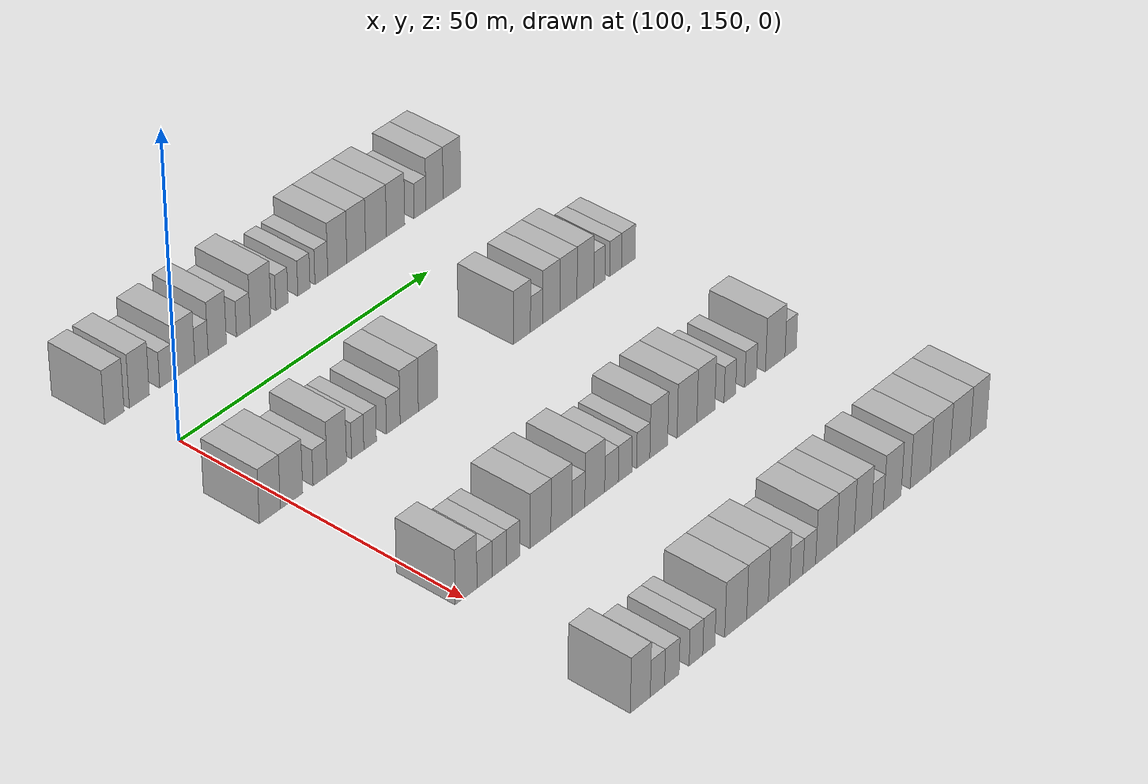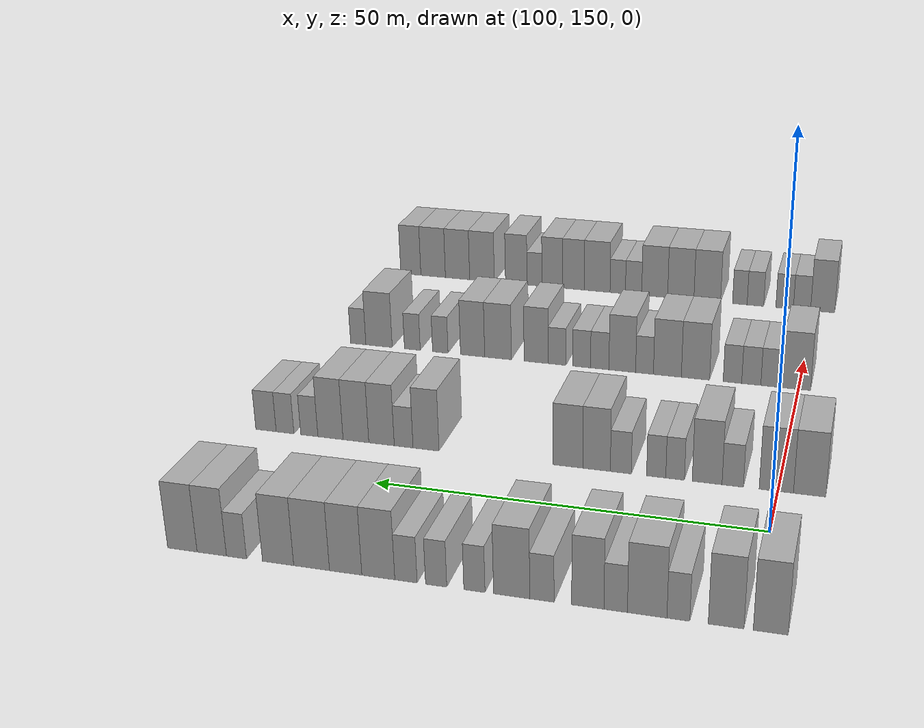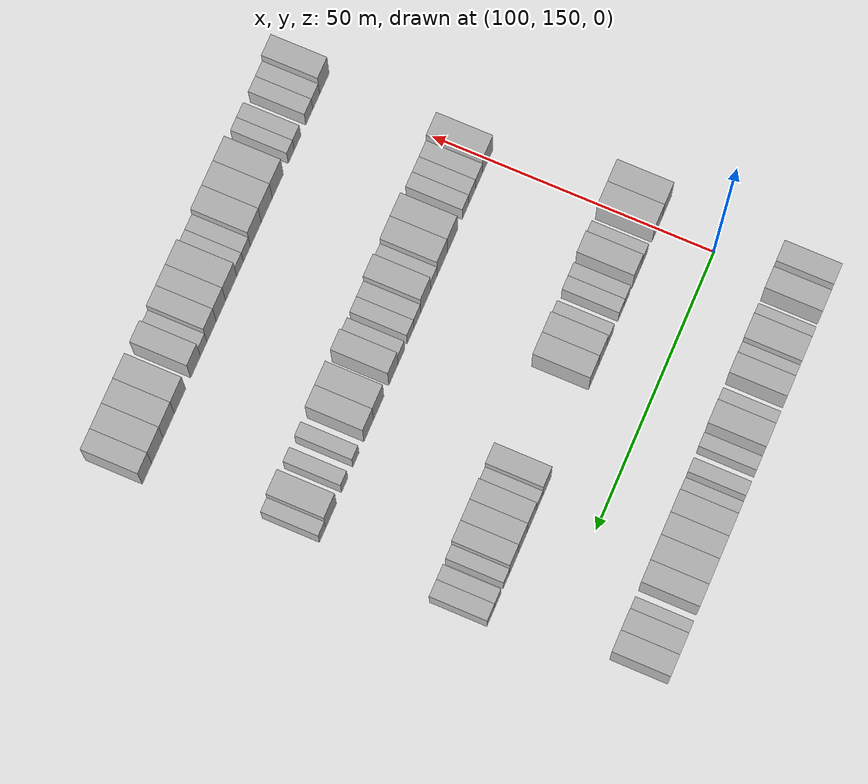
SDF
<sdf version="1.6">
 <world name="default">
  <model name="building_614">
   <static>1</static>
   <pose>85.0000 147.8713 0 0.000000 0.000000 0.000000</pose>
   <link name="link">
    <pose>0 0 4.50 0 0 0</pose>
    <collision name="collision"><geometry><box><size>10.0000 3.7098 9.0000</size></box></geometry></collision>
    <visual name="visual">
     <cast_shadows>0</cast_shadows>
     <geometry><box><size>10.0000 3.7098 9.0000</size></box></geometry>
     <material>
      <script>
       <uri>model://HANNAS_wall/materials/scripts</uri>
       <uri>model://HANNAS_wall/materials/textures</uri>
       <name>vrc/HANNAS_wall</name>
      </script>
     </material>
    </visual>
   </link>
  </model>
  <model name="building_615">
   <static>1</static>
   <pose>85.0000 152.6487 0 0.000000 0.000000 0.000000</pose>
   <link name="link">
    <pose>0 0 4.50 0 0 0</pose>
    <collision name="collision"><geometry><box><size>10.0000 3.8450 9.0000</size></box></geometry></collision>
    <visual name="visual">
     <cast_shadows>0</cast_shadows>
     <geometry><box><size>10.0000 3.8450 9.0000</size></box></geometry>
     <material>
      <script>
       <uri>model://HANNAS_wall/materials/scripts</uri>
       <uri>model://HANNAS_wall/materials/textures</uri>
       <name>vrc/HANNAS_wall</name>
      </script>
     </material>
    </visual>
   </link>
  </model>
  <model name="building_616">
   <static>1</static>
   <pose>85.0000 157.8235 0 0.000000 0.000000 0.000000</pose>
   <link name="link">
    <pose>0 0 3.00 0 0 0</pose>
    <collision name="collision"><geometry><box><size>10.0000 2.5046 6.0000</size></box></geometry></collision>
    <visual name="visual">
     <cast_shadows>0</cast_shadows>
     <geometry><box><size>10.0000 2.5046 6.0000</size></box></geometry>
     <material>
      <script>
       <uri>model://HANNAS_wall/materials/scripts</uri>
       <uri>model://HANNAS_wall/materials/textures</uri>
       <name>vrc/HANNAS_wall</name>
      </script>
     </material>
    </visual>
   </link>
  </model>
  <model name="building_617">
   <static>1</static>
   <pose>85.0000 161.2560 0 0.000000 0.000000 0.000000</pose>
   <link name="link">
    <pose>0 0 4.50 0 0 0</pose>
    <collision name="collision"><geometry><box><size>10.0000 4.3603 9.0000</size></box></geometry></collision>
    <visual name="visual">
     <cast_shadows>0</cast_shadows>
     <geometry><box><size>10.0000 4.3603 9.0000</size></box></geometry>
     <material>
      <script>
       <uri>model://HANNAS_wall/materials/scripts</uri>
       <uri>model://HANNAS_wall/materials/textures</uri>
       <name>vrc/HANNAS_wall</name>
      </script>
     </material>
    </visual>
   </link>
  </model>
  <model name="building_618">
   <static>1</static>
   <pose>85.0000 164.7422 0 0.000000 0.000000 0.000000</pose>
   <link name="link">
    <pose>0 0 3.00 0 0 0</pose>
    <collision name="collision"><geometry><box><size>10.0000 2.6121 6.0000</size></box></geometry></collision>
    <visual name="visual">
     <cast_shadows>0</cast_shadows>
     <geometry><box><size>10.0000 2.6121 6.0000</size></box></geometry>
     <material>
      <script>
       <uri>model://HANNAS_wall/materials/scripts</uri>
       <uri>model://HANNAS_wall/materials/textures</uri>
       <name>vrc/HANNAS_wall</name>
      </script>
     </material>
    </visual>
   </link>
  </model>
  <model name="building_619">
   <static>1</static>
   <pose>85.0000 167.8631 0 0.000000 0.000000 0.000000</pose>
   <link name="link">
    <pose>0 0 4.50 0 0 0</pose>
    <collision name="collision"><geometry><box><size>10.0000 3.6295 9.0000</size></box></geometry></collision>
    <visual name="visual">
     <cast_shadows>0</cast_shadows>
     <geometry><box><size>10.0000 3.6295 9.0000</size></box></geometry>
     <material>
      <script>
       <uri>model://HANNAS_wall/materials/scripts</uri>
       <uri>model://HANNAS_wall/materials/textures</uri>
       <name>vrc/HANNAS_wall</name>
      </script>
     </material>
    </visual>
   </link>
  </model>
  <model name="building_620">
   <static>1</static>
   <pose>85.0000 173.0592 0 0.000000 0.000000 0.000000</pose>
   <link name="link">
    <pose>0 0 3.00 0 0 0</pose>
    <collision name="collision"><geometry><box><size>10.0000 2.7628 6.0000</size></box></geometry></collision>
    <visual name="visual">
     <cast_shadows>0</cast_shadows>
     <geometry><box><size>10.0000 2.7628 6.0000</size></box></geometry>
     <material>
      <script>
       <uri>model://HANNAS_wall/materials/scripts</uri>
       <uri>model://HANNAS_wall/materials/textures</uri>
       <name>vrc/HANNAS_wall</name>
      </script>
     </material>
    </visual>
   </link>
  </model>
  <model name="building_621">
   <static>1</static>
   <pose>85.0000 176.5247 0 0.000000 0.000000 0.000000</pose>
   <link name="link">
    <pose>0 0 4.50 0 0 0</pose>
    <collision name="collision"><geometry><box><size>10.0000 4.1682 9.0000</size></box></geometry></collision>
    <visual name="visual">
     <cast_shadows>0</cast_shadows>
     <geometry><box><size>10.0000 4.1682 9.0000</size></box></geometry>
     <material>
      <script>
       <uri>model://HANNAS_wall/materials/scripts</uri>
       <uri>model://HANNAS_wall/materials/textures</uri>
       <name>vrc/HANNAS_wall</name>
      </script>
     </material>
    </visual>
   </link>
  </model>
  <model name="building_622">
   <static>1</static>
   <pose>85.0000 180.8434 0 0.000000 0.000000 0.000000</pose>
   <link name="link">
    <pose>0 0 3.00 0 0 0</pose>
    <collision name="collision"><geometry><box><size>10.0000 2.4691 6.0000</size></box></geometry></collision>
    <visual name="visual">
     <cast_shadows>0</cast_shadows>
     <geometry><box><size>10.0000 2.4691 6.0000</size></box></geometry>
     <material>
      <script>
       <uri>model://HANNAS_wall/materials/scripts</uri>
       <uri>model://HANNAS_wall/materials/textures</uri>
       <name>vrc/HANNAS_wall</name>
      </script>
     </material>
    </visual>
   </link>
  </model>
  <model name="building_623">
   <static>1</static>
   <pose>85.0000 185.3297 0 0.000000 0.000000 0.000000</pose>
   <link name="link">
    <pose>0 0 3.00 0 0 0</pose>
    <collision name="collision"><geometry><box><size>10.0000 2.5035 6.0000</size></box></geometry></collision>
    <visual name="visual">
     <cast_shadows>0</cast_shadows>
     <geometry><box><size>10.0000 2.5035 6.0000</size></box></geometry>
     <material>
      <script>
       <uri>model://HANNAS_wall/materials/scripts</uri>
       <uri>model://HANNAS_wall/materials/textures</uri>
       <name>vrc/HANNAS_wall</name>
      </script>
     </material>
    </visual>
   </link>
  </model>
  <model name="building_624">
   <static>1</static>
   <pose>85.0000 188.9099 0 0.000000 0.000000 0.000000</pose>
   <link name="link">
    <pose>0 0 3.00 0 0 0</pose>
    <collision name="collision"><geometry><box><size>10.0000 2.6570 6.0000</size></box></geometry></collision>
    <visual name="visual">
     <cast_shadows>0</cast_shadows>
     <geometry><box><size>10.0000 2.6570 6.0000</size></box></geometry>
     <material>
      <script>
       <uri>model://HANNAS_wall/materials/scripts</uri>
       <uri>model://HANNAS_wall/materials/textures</uri>
       <name>vrc/HANNAS_wall</name>
      </script>
     </material>
    </visual>
   </link>
  </model>
  <model name="building_625">
   <static>1</static>
   <pose>85.0000 192.2227 0 0.000000 0.000000 0.000000</pose>
   <link name="link">
    <pose>0 0 4.50 0 0 0</pose>
    <collision name="collision"><geometry><box><size>10.0000 3.9685 9.0000</size></box></geometry></collision>
    <visual name="visual">
     <cast_shadows>0</cast_shadows>
     <geometry><box><size>10.0000 3.9685 9.0000</size></box></geometry>
     <material>
      <script>
       <uri>model://HANNAS_wall/materials/scripts</uri>
       <uri>model://HANNAS_wall/materials/textures</uri>
       <name>vrc/HANNAS_wall</name>
      </script>
     </material>
    </visual>
   </link>
  </model>
  <model name="building_626">
   <static>1</static>
   <pose>85.0000 196.1717 0 0.000000 0.000000 0.000000</pose>
   <link name="link">
    <pose>0 0 4.50 0 0 0</pose>
    <collision name="collision"><geometry><box><size>10.0000 3.9293 9.0000</size></box></geometry></collision>
    <visual name="visual">
     <cast_shadows>0</cast_shadows>
     <geometry><box><size>10.0000 3.9293 9.0000</size></box></geometry>
     <material>
      <script>
       <uri>model://HANNAS_wall/materials/scripts</uri>
       <uri>model://HANNAS_wall/materials/textures</uri>
       <name>vrc/HANNAS_wall</name>
      </script>
     </material>
    </visual>
   </link>
  </model>
  <model name="building_627">
   <static>1</static>
   <pose>85.0000 200.3387 0 0.000000 0.000000 0.000000</pose>
   <link name="link">
    <pose>0 0 4.50 0 0 0</pose>
    <collision name="collision"><geometry><box><size>10.0000 4.4048 9.0000</size></box></geometry></collision>
    <visual name="visual">
     <cast_shadows>0</cast_shadows>
     <geometry><box><size>10.0000 4.4048 9.0000</size></box></geometry>
     <material>
      <script>
       <uri>model://HANNAS_wall/materials/scripts</uri>
       <uri>model://HANNAS_wall/materials/textures</uri>
       <name>vrc/HANNAS_wall</name>
      </script>
     </material>
    </visual>
   </link>
  </model>
  <model name="building_628">
   <static>1</static>
   <pose>85.0000 204.4795 0 0.000000 0.000000 0.000000</pose>
   <link name="link">
    <pose>0 0 4.50 0 0 0</pose>
    <collision name="collision"><geometry><box><size>10.0000 3.8768 9.0000</size></box></geometry></collision>
    <visual name="visual">
     <cast_shadows>0</cast_shadows>
     <geometry><box><size>10.0000 3.8768 9.0000</size></box></geometry>
     <material>
      <script>
       <uri>model://HANNAS_wall/materials/scripts</uri>
       <uri>model://HANNAS_wall/materials/textures</uri>
       <name>vrc/HANNAS_wall</name>
      </script>
     </material>
    </visual>
   </link>
  </model>
  <model name="building_629">
   <static>1</static>
   <pose>85.0000 209.6832 0 0.000000 0.000000 0.000000</pose>
   <link name="link">
    <pose>0 0 3.00 0 0 0</pose>
    <collision name="collision"><geometry><box><size>10.0000 2.5306 6.0000</size></box></geometry></collision>
    <visual name="visual">
     <cast_shadows>0</cast_shadows>
     <geometry><box><size>10.0000 2.5306 6.0000</size></box></geometry>
     <material>
      <script>
       <uri>model://HANNAS_wall/materials/scripts</uri>
       <uri>model://HANNAS_wall/materials/textures</uri>
       <name>vrc/HANNAS_wall</name>
      </script>
     </material>
    </visual>
   </link>
  </model>
  <model name="building_630">
   <static>1</static>
   <pose>85.0000 212.8100 0 0.000000 0.000000 0.000000</pose>
   <link name="link">
    <pose>0 0 4.50 0 0 0</pose>
    <collision name="collision"><geometry><box><size>10.0000 3.7230 9.0000</size></box></geometry></collision>
    <visual name="visual">
     <cast_shadows>0</cast_shadows>
     <geometry><box><size>10.0000 3.7230 9.0000</size></box></geometry>
     <material>
      <script>
       <uri>model://HANNAS_wall/materials/scripts</uri>
       <uri>model://HANNAS_wall/materials/textures</uri>
       <name>vrc/HANNAS_wall</name>
      </script>
     </material>
    </visual>
   </link>
  </model>
  <model name="building_631">
   <static>1</static>
   <pose>85.0000 216.5581 0 0.000000 0.000000 0.000000</pose>
   <link name="link">
    <pose>0 0 4.50 0 0 0</pose>
    <collision name="collision"><geometry><box><size>10.0000 3.7731 9.0000</size></box></geometry></collision>
    <visual name="visual">
     <cast_shadows>0</cast_shadows>
     <geometry><box><size>10.0000 3.7731 9.0000</size></box></geometry>
     <material>
      <script>
       <uri>model://HANNAS_wall/materials/scripts</uri>
       <uri>model://HANNAS_wall/materials/textures</uri>
       <name>vrc/HANNAS_wall</name>
      </script>
     </material>
    </visual>
   </link>
  </model>
  <model name="building_848">
   <static>1</static>
   <pose>115.0000 146.1170 0 0.000000 0.000000 0.000000</pose>
   <link name="link">
    <pose>0 0 4.50 0 0 0</pose>
    <collision name="collision"><geometry><box><size>10.0000 4.0213 9.0000</size></box></geometry></collision>
    <visual name="visual">
     <cast_shadows>0</cast_shadows>
     <geometry><box><size>10.0000 4.0213 9.0000</size></box></geometry>
     <material>
      <script>
       <uri>model://HANNAS_wall/materials/scripts</uri>
       <uri>model://HANNAS_wall/materials/textures</uri>
       <name>vrc/HANNAS_wall</name>
      </script>
     </material>
    </visual>
   </link>
  </model>
  <model name="building_849">
   <static>1</static>
   <pose>115.0000 150.2794 0 0.000000 0.000000 0.000000</pose>
   <link name="link">
    <pose>0 0 4.50 0 0 0</pose>
    <collision name="collision"><geometry><box><size>10.0000 4.3033 9.0000</size></box></geometry></collision>
    <visual name="visual">
     <cast_shadows>0</cast_shadows>
     <geometry><box><size>10.0000 4.3033 9.0000</size></box></geometry>
     <material>
      <script>
       <uri>model://HANNAS_wall/materials/scripts</uri>
       <uri>model://HANNAS_wall/materials/textures</uri>
       <name>vrc/HANNAS_wall</name>
      </script>
     </material>
    </visual>
   </link>
  </model>
  <model name="building_850">
   <static>1</static>
   <pose>115.0000 155.7871 0 0.000000 0.000000 0.000000</pose>
   <link name="link">
    <pose>0 0 3.00 0 0 0</pose>
    <collision name="collision"><geometry><box><size>10.0000 2.7122 6.0000</size></box></geometry></collision>
    <visual name="visual">
     <cast_shadows>0</cast_shadows>
     <geometry><box><size>10.0000 2.7122 6.0000</size></box></geometry>
     <material>
      <script>
       <uri>model://HANNAS_wall/materials/scripts</uri>
       <uri>model://HANNAS_wall/materials/textures</uri>
       <name>vrc/HANNAS_wall</name>
      </script>
     </material>
    </visual>
   </link>
  </model>
  <model name="building_851">
   <static>1</static>
   <pose>115.0000 159.0551 0 0.000000 0.000000 0.000000</pose>
   <link name="link">
    <pose>0 0 4.50 0 0 0</pose>
    <collision name="collision"><geometry><box><size>10.0000 3.8238 9.0000</size></box></geometry></collision>
    <visual name="visual">
     <cast_shadows>0</cast_shadows>
     <geometry><box><size>10.0000 3.8238 9.0000</size></box></geometry>
     <material>
      <script>
       <uri>model://HANNAS_wall/materials/scripts</uri>
       <uri>model://HANNAS_wall/materials/textures</uri>
       <name>vrc/HANNAS_wall</name>
      </script>
     </material>
    </visual>
   </link>
  </model>
  <model name="building_852">
   <static>1</static>
   <pose>115.0000 163.1769 0 0.000000 0.000000 0.000000</pose>
   <link name="link">
    <pose>0 0 3.00 0 0 0</pose>
    <collision name="collision"><geometry><box><size>10.0000 2.4198 6.0000</size></box></geometry></collision>
    <visual name="visual">
     <cast_shadows>0</cast_shadows>
     <geometry><box><size>10.0000 2.4198 6.0000</size></box></geometry>
     <material>
      <script>
       <uri>model://HANNAS_wall/materials/scripts</uri>
       <uri>model://HANNAS_wall/materials/textures</uri>
       <name>vrc/HANNAS_wall</name>
      </script>
     </material>
    </visual>
   </link>
  </model>
  <model name="building_853">
   <static>1</static>
   <pose>115.0000 165.6345 0 0.000000 0.000000 0.000000</pose>
   <link name="link">
    <pose>0 0 3.00 0 0 0</pose>
    <collision name="collision"><geometry><box><size>10.0000 2.4954 6.0000</size></box></geometry></collision>
    <visual name="visual">
     <cast_shadows>0</cast_shadows>
     <geometry><box><size>10.0000 2.4954 6.0000</size></box></geometry>
     <material>
      <script>
       <uri>model://HANNAS_wall/materials/scripts</uri>
       <uri>model://HANNAS_wall/materials/textures</uri>
       <name>vrc/HANNAS_wall</name>
      </script>
     </material>
    </visual>
   </link>
  </model>
  <model name="building_854">
   <static>1</static>
   <pose>115.0000 170.2615 0 0.000000 0.000000 0.000000</pose>
   <link name="link">
    <pose>0 0 3.00 0 0 0</pose>
    <collision name="collision"><geometry><box><size>10.0000 2.7585 6.0000</size></box></geometry></collision>
    <visual name="visual">
     <cast_shadows>0</cast_shadows>
     <geometry><box><size>10.0000 2.7585 6.0000</size></box></geometry>
     <material>
      <script>
       <uri>model://HANNAS_wall/materials/scripts</uri>
       <uri>model://HANNAS_wall/materials/textures</uri>
       <name>vrc/HANNAS_wall</name>
      </script>
     </material>
    </visual>
   </link>
  </model>
  <model name="building_855">
   <static>1</static>
   <pose>115.0000 173.4720 0 0.000000 0.000000 0.000000</pose>
   <link name="link">
    <pose>0 0 4.50 0 0 0</pose>
    <collision name="collision"><geometry><box><size>10.0000 3.6626 9.0000</size></box></geometry></collision>
    <visual name="visual">
     <cast_shadows>0</cast_shadows>
     <geometry><box><size>10.0000 3.6626 9.0000</size></box></geometry>
     <material>
      <script>
       <uri>model://HANNAS_wall/materials/scripts</uri>
       <uri>model://HANNAS_wall/materials/textures</uri>
       <name>vrc/HANNAS_wall</name>
      </script>
     </material>
    </visual>
   </link>
  </model>
  <model name="building_856">
   <static>1</static>
   <pose>115.0000 177.2837 0 0.000000 0.000000 0.000000</pose>
   <link name="link">
    <pose>0 0 4.50 0 0 0</pose>
    <collision name="collision"><geometry><box><size>10.0000 3.9606 9.0000</size></box></geometry></collision>
    <visual name="visual">
     <cast_shadows>0</cast_shadows>
     <geometry><box><size>10.0000 3.9606 9.0000</size></box></geometry>
     <material>
      <script>
       <uri>model://HANNAS_wall/materials/scripts</uri>
       <uri>model://HANNAS_wall/materials/textures</uri>
       <name>vrc/HANNAS_wall</name>
      </script>
     </material>
    </visual>
   </link>
  </model>
  <model name="building_857">
   <static>1</static>
   <pose>115.0000 196.7257 0 0.000000 0.000000 0.000000</pose>
   <link name="link">
    <pose>0 0 4.50 0 0 0</pose>
    <collision name="collision"><geometry><box><size>10.0000 3.6411 9.0000</size></box></geometry></collision>
    <visual name="visual">
     <cast_shadows>0</cast_shadows>
     <geometry><box><size>10.0000 3.6411 9.0000</size></box></geometry>
     <material>
      <script>
       <uri>model://HANNAS_wall/materials/scripts</uri>
       <uri>model://HANNAS_wall/materials/textures</uri>
       <name>vrc/HANNAS_wall</name>
      </script>
     </material>
    </visual>
   </link>
  </model>
  <model name="building_858">
   <static>1</static>
   <pose>115.0000 199.8703 0 0.000000 0.000000 0.000000</pose>
   <link name="link">
    <pose>0 0 3.00 0 0 0</pose>
    <collision name="collision"><geometry><box><size>10.0000 2.6481 6.0000</size></box></geometry></collision>
    <visual name="visual">
     <cast_shadows>0</cast_shadows>
     <geometry><box><size>10.0000 2.6481 6.0000</size></box></geometry>
     <material>
      <script>
       <uri>model://HANNAS_wall/materials/scripts</uri>
       <uri>model://HANNAS_wall/materials/textures</uri>
       <name>vrc/HANNAS_wall</name>
      </script>
     </material>
    </visual>
   </link>
  </model>
  <model name="building_859">
   <static>1</static>
   <pose>115.0000 203.0043 0 0.000000 0.000000 0.000000</pose>
   <link name="link">
    <pose>0 0 4.50 0 0 0</pose>
    <collision name="collision"><geometry><box><size>10.0000 3.6198 9.0000</size></box></geometry></collision>
    <visual name="visual">
     <cast_shadows>0</cast_shadows>
     <geometry><box><size>10.0000 3.6198 9.0000</size></box></geometry>
     <material>
      <script>
       <uri>model://HANNAS_wall/materials/scripts</uri>
       <uri>model://HANNAS_wall/materials/textures</uri>
       <name>vrc/HANNAS_wall</name>
      </script>
     </material>
    </visual>
   </link>
  </model>
  <model name="building_860">
   <static>1</static>
   <pose>115.0000 206.6594 0 0.000000 0.000000 0.000000</pose>
   <link name="link">
    <pose>0 0 4.50 0 0 0</pose>
    <collision name="collision"><geometry><box><size>10.0000 3.6905 9.0000</size></box></geometry></collision>
    <visual name="visual">
     <cast_shadows>0</cast_shadows>
     <geometry><box><size>10.0000 3.6905 9.0000</size></box></geometry>
     <material>
      <script>
       <uri>model://HANNAS_wall/materials/scripts</uri>
       <uri>model://HANNAS_wall/materials/textures</uri>
       <name>vrc/HANNAS_wall</name>
      </script>
     </material>
    </visual>
   </link>
  </model>
  <model name="building_861">
   <static>1</static>
   <pose>115.0000 210.3264 0 0.000000 0.000000 0.000000</pose>
   <link name="link">
    <pose>0 0 4.50 0 0 0</pose>
    <collision name="collision"><geometry><box><size>10.0000 3.6435 9.0000</size></box></geometry></collision>
    <visual name="visual">
     <cast_shadows>0</cast_shadows>
     <geometry><box><size>10.0000 3.6435 9.0000</size></box></geometry>
     <material>
      <script>
       <uri>model://HANNAS_wall/materials/scripts</uri>
       <uri>model://HANNAS_wall/materials/textures</uri>
       <name>vrc/HANNAS_wall</name>
      </script>
     </material>
    </visual>
   </link>
  </model>
  <model name="building_862">
   <static>1</static>
   <pose>115.0000 213.3924 0 0.000000 0.000000 0.000000</pose>
   <link name="link">
    <pose>0 0 3.00 0 0 0</pose>
    <collision name="collision"><geometry><box><size>10.0000 2.4885 6.0000</size></box></geometry></collision>
    <visual name="visual">
     <cast_shadows>0</cast_shadows>
     <geometry><box><size>10.0000 2.4885 6.0000</size></box></geometry>
     <material>
      <script>
       <uri>model://HANNAS_wall/materials/scripts</uri>
       <uri>model://HANNAS_wall/materials/textures</uri>
       <name>vrc/HANNAS_wall</name>
      </script>
     </material>
    </visual>
   </link>
  </model>
  <model name="building_863">
   <static>1</static>
   <pose>115.0000 216.9404 0 0.000000 0.000000 0.000000</pose>
   <link name="link">
    <pose>0 0 3.00 0 0 0</pose>
    <collision name="collision"><geometry><box><size>10.0000 2.6075 6.0000</size></box></geometry></collision>
    <visual name="visual">
     <cast_shadows>0</cast_shadows>
     <geometry><box><size>10.0000 2.6075 6.0000</size></box></geometry>
     <material>
      <script>
       <uri>model://HANNAS_wall/materials/scripts</uri>
       <uri>model://HANNAS_wall/materials/textures</uri>
       <name>vrc/HANNAS_wall</name>
      </script>
     </material>
    </visual>
   </link>
  </model>
  <model name="building_864">
   <static>1</static>
   <pose>115.0000 219.7409 0 0.000000 0.000000 0.000000</pose>
   <link name="link">
    <pose>0 0 3.00 0 0 0</pose>
    <collision name="collision"><geometry><box><size>10.0000 2.9935 6.0000</size></box></geometry></collision>
    <visual name="visual">
     <cast_shadows>0</cast_shadows>
     <geometry><box><size>10.0000 2.9935 6.0000</size></box></geometry>
     <material>
      <script>
       <uri>model://HANNAS_wall/materials/scripts</uri>
       <uri>model://HANNAS_wall/materials/textures</uri>
       <name>vrc/HANNAS_wall</name>
      </script>
     </material>
    </visual>
   </link>
  </model>
  <model name="building_1066">
   <static>1</static>
   <pose>145.0000 150.4515 0 0.000000 0.000000 0.000000</pose>
   <link name="link">
    <pose>0 0 4.50 0 0 0</pose>
    <collision name="collision"><geometry><box><size>10.0000 4.2384 9.0000</size></box></geometry></collision>
    <visual name="visual">
     <cast_shadows>0</cast_shadows>
     <geometry><box><size>10.0000 4.2384 9.0000</size></box></geometry>
     <material>
      <script>
       <uri>model://HANNAS_wall/materials/scripts</uri>
       <uri>model://HANNAS_wall/materials/textures</uri>
       <name>vrc/HANNAS_wall</name>
      </script>
     </material>
    </visual>
   </link>
  </model>
  <model name="building_1067">
   <static>1</static>
   <pose>145.0000 154.0468 0 0.000000 0.000000 0.000000</pose>
   <link name="link">
    <pose>0 0 3.00 0 0 0</pose>
    <collision name="collision"><geometry><box><size>10.0000 2.9523 6.0000</size></box></geometry></collision>
    <visual name="visual">
     <cast_shadows>0</cast_shadows>
     <geometry><box><size>10.0000 2.9523 6.0000</size></box></geometry>
     <material>
      <script>
       <uri>model://HANNAS_wall/materials/scripts</uri>
       <uri>model://HANNAS_wall/materials/textures</uri>
       <name>vrc/HANNAS_wall</name>
      </script>
     </material>
    </visual>
   </link>
  </model>
  <model name="building_1068">
   <static>1</static>
   <pose>145.0000 156.9200 0 0.000000 0.000000 0.000000</pose>
   <link name="link">
    <pose>0 0 3.00 0 0 0</pose>
    <collision name="collision"><geometry><box><size>10.0000 2.7942 6.0000</size></box></geometry></collision>
    <visual name="visual">
     <cast_shadows>0</cast_shadows>
     <geometry><box><size>10.0000 2.7942 6.0000</size></box></geometry>
     <material>
      <script>
       <uri>model://HANNAS_wall/materials/scripts</uri>
       <uri>model://HANNAS_wall/materials/textures</uri>
       <name>vrc/HANNAS_wall</name>
      </script>
     </material>
    </visual>
   </link>
  </model>
  <model name="building_1069">
   <static>1</static>
   <pose>145.0000 159.6767 0 0.000000 0.000000 0.000000</pose>
   <link name="link">
    <pose>0 0 3.00 0 0 0</pose>
    <collision name="collision"><geometry><box><size>10.0000 2.7192 6.0000</size></box></geometry></collision>
    <visual name="visual">
     <cast_shadows>0</cast_shadows>
     <geometry><box><size>10.0000 2.7192 6.0000</size></box></geometry>
     <material>
      <script>
       <uri>model://HANNAS_wall/materials/scripts</uri>
       <uri>model://HANNAS_wall/materials/textures</uri>
       <name>vrc/HANNAS_wall</name>
      </script>
     </material>
    </visual>
   </link>
  </model>
  <model name="building_1070">
   <static>1</static>
   <pose>145.0000 165.1382 0 0.000000 0.000000 0.000000</pose>
   <link name="link">
    <pose>0 0 4.50 0 0 0</pose>
    <collision name="collision"><geometry><box><size>10.0000 4.2037 9.0000</size></box></geometry></collision>
    <visual name="visual">
     <cast_shadows>0</cast_shadows>
     <geometry><box><size>10.0000 4.2037 9.0000</size></box></geometry>
     <material>
      <script>
       <uri>model://HANNAS_wall/materials/scripts</uri>
       <uri>model://HANNAS_wall/materials/textures</uri>
       <name>vrc/HANNAS_wall</name>
      </script>
     </material>
    </visual>
   </link>
  </model>
  <model name="building_1071">
   <static>1</static>
   <pose>145.0000 169.3317 0 0.000000 0.000000 0.000000</pose>
   <link name="link">
    <pose>0 0 4.50 0 0 0</pose>
    <collision name="collision"><geometry><box><size>10.0000 4.1832 9.0000</size></box></geometry></collision>
    <visual name="visual">
     <cast_shadows>0</cast_shadows>
     <geometry><box><size>10.0000 4.1832 9.0000</size></box></geometry>
     <material>
      <script>
       <uri>model://HANNAS_wall/materials/scripts</uri>
       <uri>model://HANNAS_wall/materials/textures</uri>
       <name>vrc/HANNAS_wall</name>
      </script>
     </material>
    </visual>
   </link>
  </model>
  <model name="building_1072">
   <static>1</static>
   <pose>145.0000 172.7654 0 0.000000 0.000000 0.000000</pose>
   <link name="link">
    <pose>0 0 3.00 0 0 0</pose>
    <collision name="collision"><geometry><box><size>10.0000 2.6842 6.0000</size></box></geometry></collision>
    <visual name="visual">
     <cast_shadows>0</cast_shadows>
     <geometry><box><size>10.0000 2.6842 6.0000</size></box></geometry>
     <material>
      <script>
       <uri>model://HANNAS_wall/materials/scripts</uri>
       <uri>model://HANNAS_wall/materials/textures</uri>
       <name>vrc/HANNAS_wall</name>
      </script>
     </material>
    </visual>
   </link>
  </model>
  <model name="building_1073">
   <static>1</static>
   <pose>145.0000 176.1358 0 0.000000 0.000000 0.000000</pose>
   <link name="link">
    <pose>0 0 4.50 0 0 0</pose>
    <collision name="collision"><geometry><box><size>10.0000 4.0566 9.0000</size></box></geometry></collision>
    <visual name="visual">
     <cast_shadows>0</cast_shadows>
     <geometry><box><size>10.0000 4.0566 9.0000</size></box></geometry>
     <material>
      <script>
       <uri>model://HANNAS_wall/materials/scripts</uri>
       <uri>model://HANNAS_wall/materials/textures</uri>
       <name>vrc/HANNAS_wall</name>
      </script>
     </material>
    </visual>
   </link>
  </model>
  <model name="building_1074">
   <static>1</static>
   <pose>145.0000 179.5674 0 0.000000 0.000000 0.000000</pose>
   <link name="link">
    <pose>0 0 3.00 0 0 0</pose>
    <collision name="collision"><geometry><box><size>10.0000 2.8066 6.0000</size></box></geometry></collision>
    <visual name="visual">
     <cast_shadows>0</cast_shadows>
     <geometry><box><size>10.0000 2.8066 6.0000</size></box></geometry>
     <material>
      <script>
       <uri>model://HANNAS_wall/materials/scripts</uri>
       <uri>model://HANNAS_wall/materials/textures</uri>
       <name>vrc/HANNAS_wall</name>
      </script>
     </material>
    </visual>
   </link>
  </model>
  <model name="building_1075">
   <static>1</static>
   <pose>145.0000 182.3722 0 0.000000 0.000000 0.000000</pose>
   <link name="link">
    <pose>0 0 3.00 0 0 0</pose>
    <collision name="collision"><geometry><box><size>10.0000 2.8031 6.0000</size></box></geometry></collision>
    <visual name="visual">
     <cast_shadows>0</cast_shadows>
     <geometry><box><size>10.0000 2.8031 6.0000</size></box></geometry>
     <material>
      <script>
       <uri>model://HANNAS_wall/materials/scripts</uri>
       <uri>model://HANNAS_wall/materials/textures</uri>
       <name>vrc/HANNAS_wall</name>
      </script>
     </material>
    </visual>
   </link>
  </model>
  <model name="building_1076">
   <static>1</static>
   <pose>145.0000 186.1559 0 0.000000 0.000000 0.000000</pose>
   <link name="link">
    <pose>0 0 3.00 0 0 0</pose>
    <collision name="collision"><geometry><box><size>10.0000 2.7642 6.0000</size></box></geometry></collision>
    <visual name="visual">
     <cast_shadows>0</cast_shadows>
     <geometry><box><size>10.0000 2.7642 6.0000</size></box></geometry>
     <material>
      <script>
       <uri>model://HANNAS_wall/materials/scripts</uri>
       <uri>model://HANNAS_wall/materials/textures</uri>
       <name>vrc/HANNAS_wall</name>
      </script>
     </material>
    </visual>
   </link>
  </model>
  <model name="building_1077">
   <static>1</static>
   <pose>145.0000 189.4129 0 0.000000 0.000000 0.000000</pose>
   <link name="link">
    <pose>0 0 4.50 0 0 0</pose>
    <collision name="collision"><geometry><box><size>10.0000 3.7498 9.0000</size></box></geometry></collision>
    <visual name="visual">
     <cast_shadows>0</cast_shadows>
     <geometry><box><size>10.0000 3.7498 9.0000</size></box></geometry>
     <material>
      <script>
       <uri>model://HANNAS_wall/materials/scripts</uri>
       <uri>model://HANNAS_wall/materials/textures</uri>
       <name>vrc/HANNAS_wall</name>
      </script>
     </material>
    </visual>
   </link>
  </model>
  <model name="building_1078">
   <static>1</static>
   <pose>145.0000 195.3997 0 0.000000 0.000000 0.000000</pose>
   <link name="link">
    <pose>0 0 4.50 0 0 0</pose>
    <collision name="collision"><geometry><box><size>10.0000 4.2237 9.0000</size></box></geometry></collision>
    <visual name="visual">
     <cast_shadows>0</cast_shadows>
     <geometry><box><size>10.0000 4.2237 9.0000</size></box></geometry>
     <material>
      <script>
       <uri>model://HANNAS_wall/materials/scripts</uri>
       <uri>model://HANNAS_wall/materials/textures</uri>
       <name>vrc/HANNAS_wall</name>
      </script>
     </material>
    </visual>
   </link>
  </model>
  <model name="building_1079">
   <static>1</static>
   <pose>145.0000 199.4404 0 0.000000 0.000000 0.000000</pose>
   <link name="link">
    <pose>0 0 4.50 0 0 0</pose>
    <collision name="collision"><geometry><box><size>10.0000 3.8577 9.0000</size></box></geometry></collision>
    <visual name="visual">
     <cast_shadows>0</cast_shadows>
     <geometry><box><size>10.0000 3.8577 9.0000</size></box></geometry>
     <material>
      <script>
       <uri>model://HANNAS_wall/materials/scripts</uri>
       <uri>model://HANNAS_wall/materials/textures</uri>
       <name>vrc/HANNAS_wall</name>
      </script>
     </material>
    </visual>
   </link>
  </model>
  <model name="building_1080">
   <static>1</static>
   <pose>145.0000 204.6143 0 0.000000 0.000000 0.000000</pose>
   <link name="link">
    <pose>0 0 3.00 0 0 0</pose>
    <collision name="collision"><geometry><box><size>10.0000 2.4902 6.0000</size></box></geometry></collision>
    <visual name="visual">
     <cast_shadows>0</cast_shadows>
     <geometry><box><size>10.0000 2.4902 6.0000</size></box></geometry>
     <material>
      <script>
       <uri>model://HANNAS_wall/materials/scripts</uri>
       <uri>model://HANNAS_wall/materials/textures</uri>
       <name>vrc/HANNAS_wall</name>
      </script>
     </material>
    </visual>
   </link>
  </model>
  <model name="building_1081">
   <static>1</static>
   <pose>145.0000 209.1377 0 0.000000 0.000000 0.000000</pose>
   <link name="link">
    <pose>0 0 3.00 0 0 0</pose>
    <collision name="collision"><geometry><box><size>10.0000 2.5566 6.0000</size></box></geometry></collision>
    <visual name="visual">
     <cast_shadows>0</cast_shadows>
     <geometry><box><size>10.0000 2.5566 6.0000</size></box></geometry>
     <material>
      <script>
       <uri>model://HANNAS_wall/materials/scripts</uri>
       <uri>model://HANNAS_wall/materials/textures</uri>
       <name>vrc/HANNAS_wall</name>
      </script>
     </material>
    </visual>
   </link>
  </model>
  <model name="building_1082">
   <static>1</static>
   <pose>145.0000 214.5816 0 0.000000 0.000000 0.000000</pose>
   <link name="link">
    <pose>0 0 4.50 0 0 0</pose>
    <collision name="collision"><geometry><box><size>10.0000 4.3312 9.0000</size></box></geometry></collision>
    <visual name="visual">
     <cast_shadows>0</cast_shadows>
     <geometry><box><size>10.0000 4.3312 9.0000</size></box></geometry>
     <material>
      <script>
       <uri>model://HANNAS_wall/materials/scripts</uri>
       <uri>model://HANNAS_wall/materials/textures</uri>
       <name>vrc/HANNAS_wall</name>
      </script>
     </material>
    </visual>
   </link>
  </model>
  <model name="building_1083">
   <static>1</static>
   <pose>145.0000 218.0051 0 0.000000 0.000000 0.000000</pose>
   <link name="link">
    <pose>0 0 3.00 0 0 0</pose>
    <collision name="collision"><geometry><box><size>10.0000 2.5158 6.0000</size></box></geometry></collision>
    <visual name="visual">
     <cast_shadows>0</cast_shadows>
     <geometry><box><size>10.0000 2.5158 6.0000</size></box></geometry>
     <material>
      <script>
       <uri>model://HANNAS_wall/materials/scripts</uri>
       <uri>model://HANNAS_wall/materials/textures</uri>
       <name>vrc/HANNAS_wall</name>
      </script>
     </material>
    </visual>
   </link>
  </model>
  <model name="building_1297">
   <static>1</static>
   <pose>175.0000 148.7140 0 0.000000 0.000000 0.000000</pose>
   <link name="link">
    <pose>0 0 4.50 0 0 0</pose>
    <collision name="collision"><geometry><box><size>10.0000 3.9065 9.0000</size></box></geometry></collision>
    <visual name="visual">
     <cast_shadows>0</cast_shadows>
     <geometry><box><size>10.0000 3.9065 9.0000</size></box></geometry>
     <material>
      <script>
       <uri>model://HANNAS_wall/materials/scripts</uri>
       <uri>model://HANNAS_wall/materials/textures</uri>
       <name>vrc/HANNAS_wall</name>
      </script>
     </material>
    </visual>
   </link>
  </model>
  <model name="building_1298">
   <static>1</static>
   <pose>175.0000 152.0728 0 0.000000 0.000000 0.000000</pose>
   <link name="link">
    <pose>0 0 3.00 0 0 0</pose>
    <collision name="collision"><geometry><box><size>10.0000 2.8112 6.0000</size></box></geometry></collision>
    <visual name="visual">
     <cast_shadows>0</cast_shadows>
     <geometry><box><size>10.0000 2.8112 6.0000</size></box></geometry>
     <material>
      <script>
       <uri>model://HANNAS_wall/materials/scripts</uri>
       <uri>model://HANNAS_wall/materials/textures</uri>
       <name>vrc/HANNAS_wall</name>
      </script>
     </material>
    </visual>
   </link>
  </model>
  <model name="building_1299">
   <static>1</static>
   <pose>175.0000 154.9152 0 0.000000 0.000000 0.000000</pose>
   <link name="link">
    <pose>0 0 3.00 0 0 0</pose>
    <collision name="collision"><geometry><box><size>10.0000 2.8736 6.0000</size></box></geometry></collision>
    <visual name="visual">
     <cast_shadows>0</cast_shadows>
     <geometry><box><size>10.0000 2.8736 6.0000</size></box></geometry>
     <material>
      <script>
       <uri>model://HANNAS_wall/materials/scripts</uri>
       <uri>model://HANNAS_wall/materials/textures</uri>
       <name>vrc/HANNAS_wall</name>
      </script>
     </material>
    </visual>
   </link>
  </model>
  <model name="building_1300">
   <static>1</static>
   <pose>175.0000 159.7203 0 0.000000 0.000000 0.000000</pose>
   <link name="link">
    <pose>0 0 3.00 0 0 0</pose>
    <collision name="collision"><geometry><box><size>10.0000 2.7365 6.0000</size></box></geometry></collision>
    <visual name="visual">
     <cast_shadows>0</cast_shadows>
     <geometry><box><size>10.0000 2.7365 6.0000</size></box></geometry>
     <material>
      <script>
       <uri>model://HANNAS_wall/materials/scripts</uri>
       <uri>model://HANNAS_wall/materials/textures</uri>
       <name>vrc/HANNAS_wall</name>
      </script>
     </material>
    </visual>
   </link>
  </model>
  <model name="building_1301">
   <static>1</static>
   <pose>175.0000 162.3017 0 0.000000 0.000000 0.000000</pose>
   <link name="link">
    <pose>0 0 3.00 0 0 0</pose>
    <collision name="collision"><geometry><box><size>10.0000 2.4263 6.0000</size></box></geometry></collision>
    <visual name="visual">
     <cast_shadows>0</cast_shadows>
     <geometry><box><size>10.0000 2.4263 6.0000</size></box></geometry>
     <material>
      <script>
       <uri>model://HANNAS_wall/materials/scripts</uri>
       <uri>model://HANNAS_wall/materials/textures</uri>
       <name>vrc/HANNAS_wall</name>
      </script>
     </material>
    </visual>
   </link>
  </model>
  <model name="building_1302">
   <static>1</static>
   <pose>175.0000 167.7506 0 0.000000 0.000000 0.000000</pose>
   <link name="link">
    <pose>0 0 4.50 0 0 0</pose>
    <collision name="collision"><geometry><box><size>10.0000 4.4716 9.0000</size></box></geometry></collision>
    <visual name="visual">
     <cast_shadows>0</cast_shadows>
     <geometry><box><size>10.0000 4.4716 9.0000</size></box></geometry>
     <material>
      <script>
       <uri>model://HANNAS_wall/materials/scripts</uri>
       <uri>model://HANNAS_wall/materials/textures</uri>
       <name>vrc/HANNAS_wall</name>
      </script>
     </material>
    </visual>
   </link>
  </model>
  <model name="building_1303">
   <static>1</static>
   <pose>175.0000 172.2129 0 0.000000 0.000000 0.000000</pose>
   <link name="link">
    <pose>0 0 4.50 0 0 0</pose>
    <collision name="collision"><geometry><box><size>10.0000 4.4529 9.0000</size></box></geometry></collision>
    <visual name="visual">
     <cast_shadows>0</cast_shadows>
     <geometry><box><size>10.0000 4.4529 9.0000</size></box></geometry>
     <material>
      <script>
       <uri>model://HANNAS_wall/materials/scripts</uri>
       <uri>model://HANNAS_wall/materials/textures</uri>
       <name>vrc/HANNAS_wall</name>
      </script>
     </material>
    </visual>
   </link>
  </model>
  <model name="building_1304">
   <static>1</static>
   <pose>175.0000 176.6521 0 0.000000 0.000000 0.000000</pose>
   <link name="link">
    <pose>0 0 4.50 0 0 0</pose>
    <collision name="collision"><geometry><box><size>10.0000 4.4255 9.0000</size></box></geometry></collision>
    <visual name="visual">
     <cast_shadows>0</cast_shadows>
     <geometry><box><size>10.0000 4.4255 9.0000</size></box></geometry>
     <material>
      <script>
       <uri>model://HANNAS_wall/materials/scripts</uri>
       <uri>model://HANNAS_wall/materials/textures</uri>
       <name>vrc/HANNAS_wall</name>
      </script>
     </material>
    </visual>
   </link>
  </model>
  <model name="building_1305">
   <static>1</static>
   <pose>175.0000 180.2603 0 0.000000 0.000000 0.000000</pose>
   <link name="link">
    <pose>0 0 3.00 0 0 0</pose>
    <collision name="collision"><geometry><box><size>10.0000 2.7909 6.0000</size></box></geometry></collision>
    <visual name="visual">
     <cast_shadows>0</cast_shadows>
     <geometry><box><size>10.0000 2.7909 6.0000</size></box></geometry>
     <material>
      <script>
       <uri>model://HANNAS_wall/materials/scripts</uri>
       <uri>model://HANNAS_wall/materials/textures</uri>
       <name>vrc/HANNAS_wall</name>
      </script>
     </material>
    </visual>
   </link>
  </model>
  <model name="building_1306">
   <static>1</static>
   <pose>175.0000 182.9874 0 0.000000 0.000000 0.000000</pose>
   <link name="link">
    <pose>0 0 3.00 0 0 0</pose>
    <collision name="collision"><geometry><box><size>10.0000 2.6632 6.0000</size></box></geometry></collision>
    <visual name="visual">
     <cast_shadows>0</cast_shadows>
     <geometry><box><size>10.0000 2.6632 6.0000</size></box></geometry>
     <material>
      <script>
       <uri>model://HANNAS_wall/materials/scripts</uri>
       <uri>model://HANNAS_wall/materials/textures</uri>
       <name>vrc/HANNAS_wall</name>
      </script>
     </material>
    </visual>
   </link>
  </model>
  <model name="building_1307">
   <static>1</static>
   <pose>175.0000 186.5516 0 0.000000 0.000000 0.000000</pose>
   <link name="link">
    <pose>0 0 4.50 0 0 0</pose>
    <collision name="collision"><geometry><box><size>10.0000 4.4653 9.0000</size></box></geometry></collision>
    <visual name="visual">
     <cast_shadows>0</cast_shadows>
     <geometry><box><size>10.0000 4.4653 9.0000</size></box></geometry>
     <material>
      <script>
       <uri>model://HANNAS_wall/materials/scripts</uri>
       <uri>model://HANNAS_wall/materials/textures</uri>
       <name>vrc/HANNAS_wall</name>
      </script>
     </material>
    </visual>
   </link>
  </model>
  <model name="building_1308">
   <static>1</static>
   <pose>175.0000 190.6689 0 0.000000 0.000000 0.000000</pose>
   <link name="link">
    <pose>0 0 4.50 0 0 0</pose>
    <collision name="collision"><geometry><box><size>10.0000 3.7693 9.0000</size></box></geometry></collision>
    <visual name="visual">
     <cast_shadows>0</cast_shadows>
     <geometry><box><size>10.0000 3.7693 9.0000</size></box></geometry>
     <material>
      <script>
       <uri>model://HANNAS_wall/materials/scripts</uri>
       <uri>model://HANNAS_wall/materials/textures</uri>
       <name>vrc/HANNAS_wall</name>
      </script>
     </material>
    </visual>
   </link>
  </model>
  <model name="building_1309">
   <static>1</static>
   <pose>175.0000 194.3914 0 0.000000 0.000000 0.000000</pose>
   <link name="link">
    <pose>0 0 4.50 0 0 0</pose>
    <collision name="collision"><geometry><box><size>10.0000 3.6755 9.0000</size></box></geometry></collision>
    <visual name="visual">
     <cast_shadows>0</cast_shadows>
     <geometry><box><size>10.0000 3.6755 9.0000</size></box></geometry>
     <material>
      <script>
       <uri>model://HANNAS_wall/materials/scripts</uri>
       <uri>model://HANNAS_wall/materials/textures</uri>
       <name>vrc/HANNAS_wall</name>
      </script>
     </material>
    </visual>
   </link>
  </model>
  <model name="building_1310">
   <static>1</static>
   <pose>175.0000 197.5474 0 0.000000 0.000000 0.000000</pose>
   <link name="link">
    <pose>0 0 3.00 0 0 0</pose>
    <collision name="collision"><geometry><box><size>10.0000 2.6366 6.0000</size></box></geometry></collision>
    <visual name="visual">
     <cast_shadows>0</cast_shadows>
     <geometry><box><size>10.0000 2.6366 6.0000</size></box></geometry>
     <material>
      <script>
       <uri>model://HANNAS_wall/materials/scripts</uri>
       <uri>model://HANNAS_wall/materials/textures</uri>
       <name>vrc/HANNAS_wall</name>
      </script>
     </material>
    </visual>
   </link>
  </model>
  <model name="building_1311">
   <static>1</static>
   <pose>175.0000 200.7874 0 0.000000 0.000000 0.000000</pose>
   <link name="link">
    <pose>0 0 4.50 0 0 0</pose>
    <collision name="collision"><geometry><box><size>10.0000 3.8434 9.0000</size></box></geometry></collision>
    <visual name="visual">
     <cast_shadows>0</cast_shadows>
     <geometry><box><size>10.0000 3.8434 9.0000</size></box></geometry>
     <material>
      <script>
       <uri>model://HANNAS_wall/materials/scripts</uri>
       <uri>model://HANNAS_wall/materials/textures</uri>
       <name>vrc/HANNAS_wall</name>
      </script>
     </material>
    </visual>
   </link>
  </model>
  <model name="building_1312">
   <static>1</static>
   <pose>175.0000 206.9354 0 0.000000 0.000000 0.000000</pose>
   <link name="link">
    <pose>0 0 4.50 0 0 0</pose>
    <collision name="collision"><geometry><box><size>10.0000 4.4527 9.0000</size></box></geometry></collision>
    <visual name="visual">
     <cast_shadows>0</cast_shadows>
     <geometry><box><size>10.0000 4.4527 9.0000</size></box></geometry>
     <material>
      <script>
       <uri>model://HANNAS_wall/materials/scripts</uri>
       <uri>model://HANNAS_wall/materials/textures</uri>
       <name>vrc/HANNAS_wall</name>
      </script>
     </material>
    </visual>
   </link>
  </model>
  <model name="building_1313">
   <static>1</static>
   <pose>175.0000 211.3619 0 0.000000 0.000000 0.000000</pose>
   <link name="link">
    <pose>0 0 4.50 0 0 0</pose>
    <collision name="collision"><geometry><box><size>10.0000 4.4002 9.0000</size></box></geometry></collision>
    <visual name="visual">
     <cast_shadows>0</cast_shadows>
     <geometry><box><size>10.0000 4.4002 9.0000</size></box></geometry>
     <material>
      <script>
       <uri>model://HANNAS_wall/materials/scripts</uri>
       <uri>model://HANNAS_wall/materials/textures</uri>
       <name>vrc/HANNAS_wall</name>
      </script>
     </material>
    </visual>
   </link>
  </model>
  <model name="building_1314">
   <static>1</static>
   <pose>175.0000 215.8113 0 0.000000 0.000000 0.000000</pose>
   <link name="link">
    <pose>0 0 4.50 0 0 0</pose>
    <collision name="collision"><geometry><box><size>10.0000 4.4987 9.0000</size></box></geometry></collision>
    <visual name="visual">
     <cast_shadows>0</cast_shadows>
     <geometry><box><size>10.0000 4.4987 9.0000</size></box></geometry>
     <material>
      <script>
       <uri>model://HANNAS_wall/materials/scripts</uri>
       <uri>model://HANNAS_wall/materials/textures</uri>
       <name>vrc/HANNAS_wall</name>
      </script>
     </material>
    </visual>
   </link>
  </model>
  <model name="building_1315">
   <static>1</static>
   <pose>175.0000 219.9091 0 0.000000 0.000000 0.000000</pose>
   <link name="link">
    <pose>0 0 4.50 0 0 0</pose>
    <collision name="collision"><geometry><box><size>10.0000 3.6969 9.0000</size></box></geometry></collision>
    <visual name="visual">
     <cast_shadows>0</cast_shadows>
     <geometry><box><size>10.0000 3.6969 9.0000</size></box></geometry>
     <material>
      <script>
       <uri>model://HANNAS_wall/materials/scripts</uri>
       <uri>model://HANNAS_wall/materials/textures</uri>
       <name>vrc/HANNAS_wall</name>
      </script>
     </material>
    </visual>
   </link>
  </model>
 </world>
</sdf>
